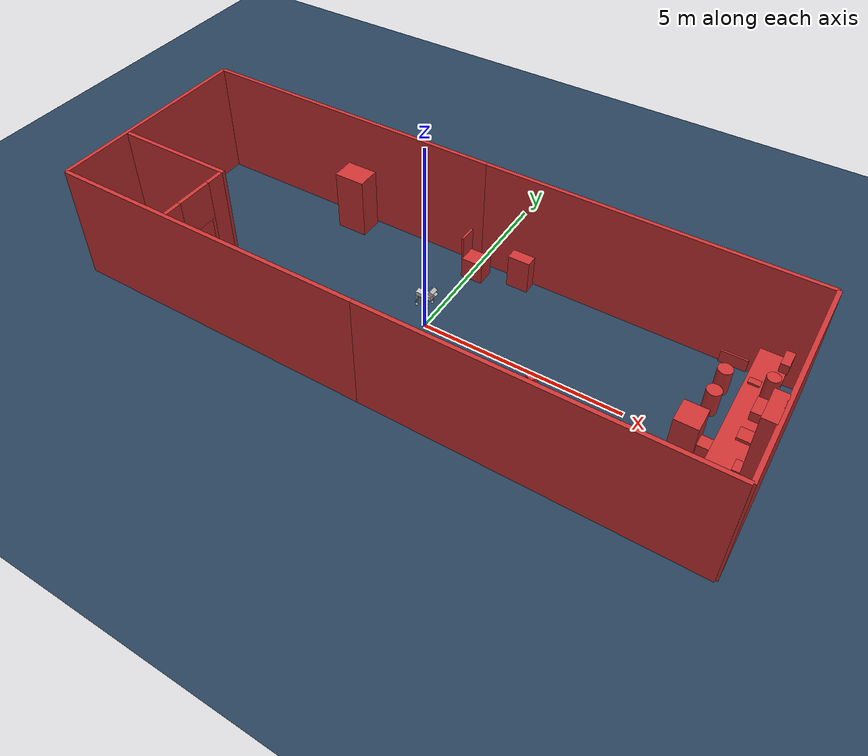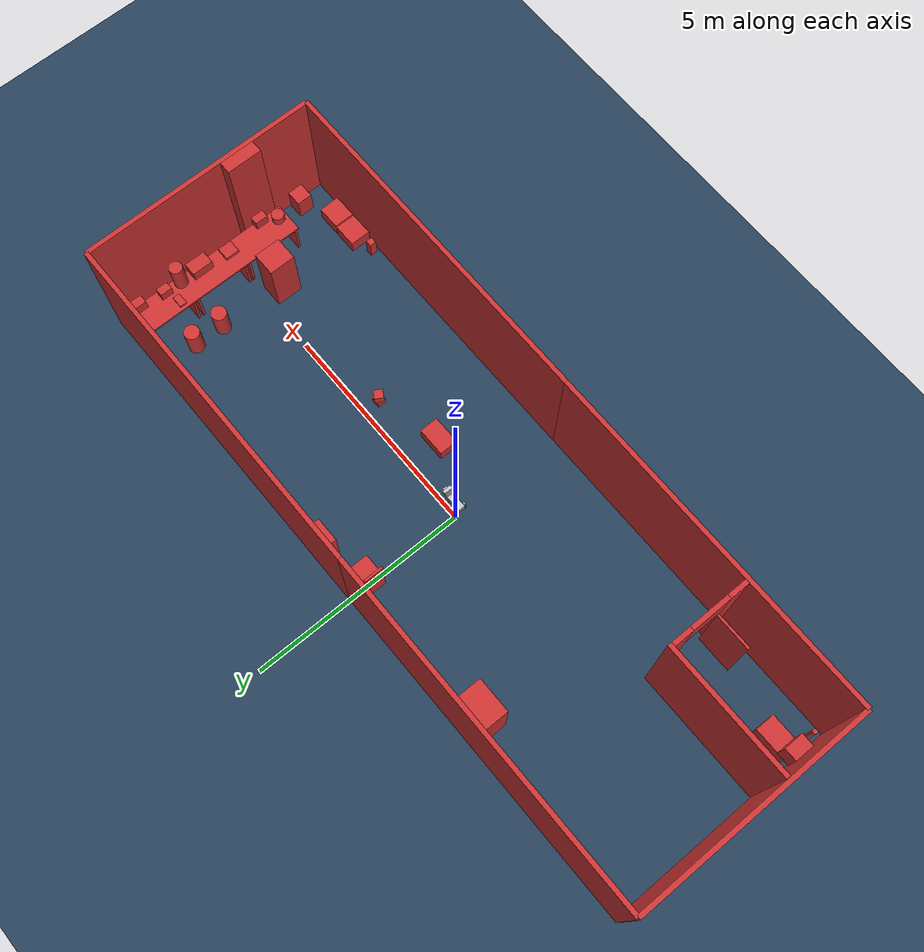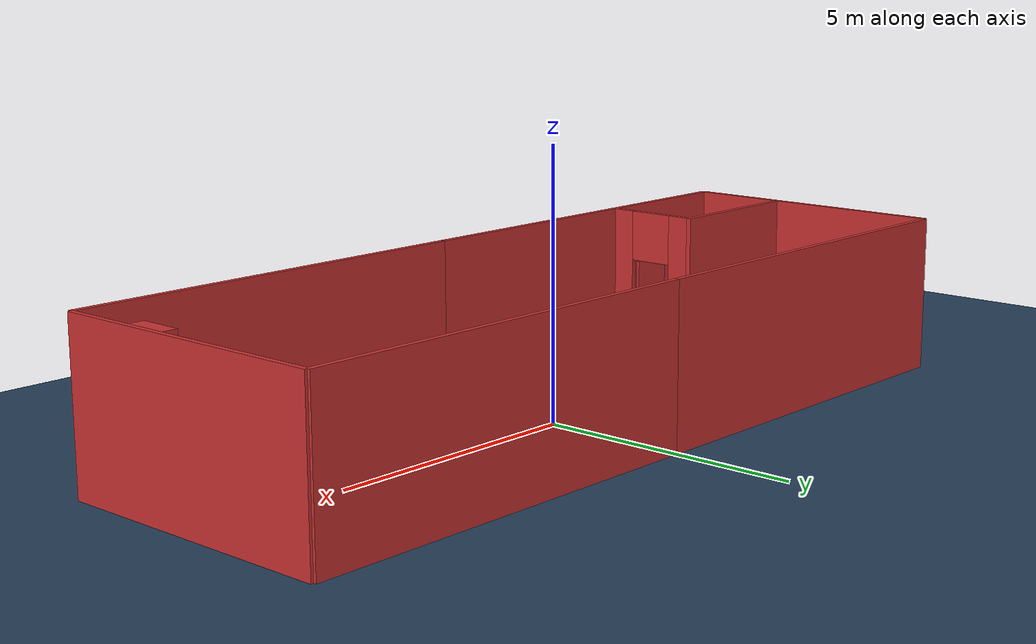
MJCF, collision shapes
<mujoco model="XXG scene">
  <include file="xxg.xml" />

  <statistic center="0 0 0.1" extent="0.8" />

  <visual>
    <headlight diffuse="0.6 0.6 0.6" ambient="0.3 0.3 0.3" specular="0 0 0" />
    <rgba haze="0.15 0.25 0.35 1" />
    <global azimuth="-130" elevation="-20" />
    <map znear="0.01" zfar="100"/>
  </visual>

  <asset>
    <texture type="skybox" builtin="gradient" rgb1="0.3 0.5 0.7" rgb2="0 0 0" width="512" height="3072" />
    <texture type="2d" name="groundplane" builtin="checker" mark="edge" rgb1="0.2 0.3 0.4" rgb2="0.1 0.2 0.3" markrgb="0.8 0.8 0.8" width="300" height="300" />
    <material name="groundplane" texture="groundplane" texuniform="true" texrepeat="5 5" reflectance="0.2" />
  <hfield name="perlin_hfield" size="1.0 0.75 0.2 0.2" file="../height_field.png" /><hfield name="image_hfield" size="1.0 1.0 0.02 0.1" file="../unitree_hfield.png" /></asset>

  <worldbody>
    <light pos="0 0 1.5" dir="0 0 -1" directional="true" />
    <geom name="floor" pos="0 0.0 0.01" size="0 0 0.05" type="plane" material="groundplane" />
    <geom name="phs_Cube" type="box" size="0.28 0.15 0.45" pos="1.2 2.44 0.44" quat="1.0 0.0 0.0 0.0" rgba="0.8 0.2 0.2 1" solref="0.02 1" solimp="0.9 0.95 0.001"/>
    <geom name="phs_Cube32" type="box" size="4.0 0.05 1.5" pos="4.0 2.7 1.5" quat="1.0 0.0 0.0 0.0" rgba="0.8 0.2 0.2 1" solref="0.02 1" solimp="0.9 0.95 0.001"/>
    <geom name="phs_Cube33" type="box" size="4.0 0.05 1.5" pos="4.0 -2.7 1.5" quat="1.0 0.0 0.0 0.0" rgba="0.8 0.2 0.2 1" solref="0.02 1" solimp="0.9 0.95 0.001"/>
    <geom name="phs_Cube34" type="box" size="2.7 0.05 1.5" pos="8.0 0.0 1.5" quat="0.707107 0.0 0.0 -0.707107" rgba="0.8 0.2 0.2 1" solref="0.02 1" solimp="0.9 0.95 0.001"/>
    <geom name="phs_Cube35" type="box" size="4.0 0.05 1.5" pos="-4.0 2.7 1.5" quat="1.0 0.0 0.0 0.0" rgba="0.8 0.2 0.2 1" solref="0.02 1" solimp="0.9 0.95 0.001"/>
    <geom name="phs_Cube36" type="box" size="4.0 0.05 1.5" pos="-4.0 -2.7 1.5" quat="1.0 0.0 0.0 0.0" rgba="0.8 0.2 0.2 1" solref="0.02 1" solimp="0.9 0.95 0.001"/>
    <geom name="phs_Cube37" type="box" size="2.7 0.05 1.5" pos="-8.0 0.0 1.5" quat="0.707107 0.0 0.0 -0.707107" rgba="0.8 0.2 0.2 1" solref="0.02 1" solimp="0.9 0.95 0.001"/>
    <geom name="phs_Cube38" type="box" size="0.4 0.15 1.5" pos="7.82 -0.9 1.5" quat="0.707107 0.0 0.0 -0.707107" rgba="0.8 0.2 0.2 1" solref="0.02 1" solimp="0.9 0.95 0.001"/>
    <geom name="phs_Cube39" type="box" size="1.5 0.05 1.5" pos="-6.44 -0.8 1.5" quat="1.0 0.0 0.0 0.0" rgba="0.8 0.2 0.2 1" solref="0.02 1" solimp="0.9 0.95 0.001"/>
    <geom name="phs_Cube40" type="box" size="0.225 0.05 1.5" pos="-4.99 -2.43 1.5" quat="0.707107 0.0 0.0 -0.707107" rgba="0.8 0.2 0.2 1" solref="0.02 1" solimp="0.9 0.95 0.001"/>
    <geom name="phs_Cube41" type="box" size="0.225 0.05 1.5" pos="-4.99 -1.07 1.5" quat="0.707107 0.0 0.0 -0.707107" rgba="0.8 0.2 0.2 1" solref="0.02 1" solimp="0.9 0.95 0.001"/>
    <geom name="phs_Cube42" type="box" size="0.455 0.05 0.5" pos="-4.99 -1.75 2.5" quat="0.707107 0.0 0.0 -0.707107" rgba="0.8 0.2 0.2 1" solref="0.02 1" solimp="0.9 0.95 0.001"/>
    <geom name="phs_Cube2" type="box" size="0.28 0.225 0.3" pos="0.1 2.2 0.25" quat="1.0 0.0 0.0 0.0" rgba="0.8 0.2 0.2 1" solref="0.02 1" solimp="0.9 0.95 0.001"/>
    <geom name="phs_Cube3" type="box" size="0.025 0.225 0.3" pos="-0.17 2.2 0.88" quat="1.0 0.0 0.0 0.0" rgba="0.8 0.2 0.2 1" solref="0.02 1" solimp="0.9 0.95 0.001"/>
    <geom name="phs_Cube4" type="box" size="0.315 0.025 0.17" pos="6.5 2.62 0.17" quat="1.0 0.0 0.0 0.0" rgba="0.8 0.2 0.2 1" solref="0.02 1" solimp="0.9 0.95 0.001"/>
    <geom name="phs_Cube5" type="box" size="0.315 0.025 0.4" pos="7.305 2.59 0.4" quat="1.0 0.0 0.0 0.0" rgba="0.8 0.2 0.2 1" solref="0.02 1" solimp="0.9 0.95 0.001"/>
    <geom name="phs_Cube6" type="box" size="0.315 0.025 0.4" pos="7.305 1.36 0.4" quat="1.0 0.0 0.0 0.0" rgba="0.8 0.2 0.2 1" solref="0.02 1" solimp="0.9 0.95 0.001"/>
    <geom name="phs_Cube7" type="box" size="0.315 0.025 0.4" pos="7.305 1.24 0.4" quat="1.0 0.0 0.0 0.0" rgba="0.8 0.2 0.2 1" solref="0.02 1" solimp="0.9 0.95 0.001"/>
    <geom name="phs_Cube8" type="box" size="0.315 0.025 0.4" pos="7.305 0.0 0.4" quat="1.0 0.0 0.0 0.0" rgba="0.8 0.2 0.2 1" solref="0.02 1" solimp="0.9 0.95 0.001"/>
    <geom name="phs_Cube9" type="box" size="0.315 0.025 0.4" pos="7.305 -0.1 0.4" quat="1.0 0.0 0.0 0.0" rgba="0.8 0.2 0.2 1" solref="0.02 1" solimp="0.9 0.95 0.001"/>
    <geom name="phs_Cube10" type="box" size="0.315 0.025 0.4" pos="7.305 -1.34 0.4" quat="1.0 0.0 0.0 0.0" rgba="0.8 0.2 0.2 1" solref="0.02 1" solimp="0.9 0.95 0.001"/>
    <geom name="phs_Cube11" type="box" size="0.175 0.175 0.26" pos="7.75 -2.0 0.27" quat="1.0 0.0 0.0 0.0" rgba="0.8 0.2 0.2 1" solref="0.02 1" solimp="0.9 0.95 0.001"/>
    <geom name="phs_Cube12" type="box" size="0.27 0.25 0.155" pos="7.0 -2.43 0.155" quat="1.0 0.0 0.0 0.0" rgba="0.8 0.2 0.2 1" solref="0.02 1" solimp="0.9 0.95 0.001"/>
    <geom name="phs_Cube13" type="box" size="0.27 0.25 0.155" pos="6.43 -2.43 0.155" quat="1.0 0.0 0.0 0.0" rgba="0.8 0.2 0.2 1" solref="0.02 1" solimp="0.9 0.95 0.001"/>
    <geom name="phs_Cube14" type="box" size="0.1 0.1 0.1" pos="3.0 -0.4 0.1" quat="1.0 0.0 0.0 0.0" rgba="0.8 0.2 0.2 1" solref="0.02 1" solimp="0.9 0.95 0.001"/>
    <geom name="phs_Cube15" type="box" size="0.1 0.1 0.1" pos="3.0 -0.4 0.3" quat="0.965926 0.0 0.0 -0.258819" rgba="0.8 0.2 0.2 1" solref="0.02 1" solimp="0.9 0.95 0.001"/>
    <geom name="phs_Cube16" type="box" size="0.33 0.215 0.155" pos="1.5 -0.795 0.155" quat="1.0 0.0 0.0 0.0" rgba="0.8 0.2 0.2 1" solref="0.02 1" solimp="0.9 0.95 0.001"/>
    <geom name="phs_Cube17" type="box" size="0.4 0.3 0.82" pos="-3.5 2.27 0.82" quat="1.0 0.0 0.0 0.0" rgba="0.8 0.2 0.2 1" solref="0.02 1" solimp="0.9 0.95 0.001"/>
    <geom name="phs_Cube18" type="box" size="0.075 0.075 0.21" pos="5.89 -2.5 0.21" quat="1.0 0.0 0.0 0.0" rgba="0.8 0.2 0.2 1" solref="0.02 1" solimp="0.9 0.95 0.001"/>
    <geom name="phs_Cube19" type="box" size="0.27 0.3 0.7" pos="6.43 -0.45 0.7" quat="1.0 0.0 0.0 0.0" rgba="0.8 0.2 0.2 1" solref="0.02 1" solimp="0.9 0.95 0.001"/>
    <geom name="phs_Cube20" type="box" size="0.15 0.15 0.4" pos="6.83 -0.45 0.4" quat="1.0 0.0 0.0 0.0" rgba="0.8 0.2 0.2 1" solref="0.02 1" solimp="0.9 0.95 0.001"/>
    <geom name="phs_Cube21" type="box" size="0.375 0.225 0.325" pos="-7.44 -1.795 0.325" quat="1.0 0.0 0.0 0.0" rgba="0.8 0.2 0.2 1" solref="0.02 1" solimp="0.9 0.95 0.001"/>
    <geom name="phs_Cube22" type="box" size="0.15 0.225 0.325" pos="-7.79 -1.795 0.925" quat="1.0 0.0 0.0 0.0" rgba="0.8 0.2 0.2 1" solref="0.02 1" solimp="0.9 0.95 0.001"/>
    <geom name="phs_Cylinder"  type="cylinder" size="0.175 0.35" pos="6.5 1.1 0.31" quat="1.0 0.0 0.0 0.0" rgba="0.8 0.2 0.2 1" solref="0.02 1" solimp="0.9 0.95 0.001"/>
    <geom name="phs_Cylinder2"  type="cylinder" size="0.175 0.35" pos="6.5 1.8 0.31" quat="1.0 0.0 0.0 0.0" rgba="0.8 0.2 0.2 1" solref="0.02 1" solimp="0.9 0.95 0.001"/>
    <geom name="phs_Cylinder3"  type="cylinder" size="0.05 0.35" pos="-7.8 -2.39 0.35" quat="1.0 0.0 0.0 0.0" rgba="0.8 0.2 0.2 1" solref="0.02 1" solimp="0.9 0.95 0.001"/>
    <geom name="phs_Cylinder4"  type="cylinder" size="0.075 0.35" pos="-7.7 -1.0 0.35" quat="1.0 0.0 0.0 0.0" rgba="0.8 0.2 0.2 1" solref="0.02 1" solimp="0.9 0.95 0.001"/>
    <geom name="phs_Cube23" type="box" size="0.345 2.05 0.02" pos="7.3 0.65 0.785" quat="1.0 0.0 0.0 0.0" rgba="0.8 0.2 0.2 1" solref="0.02 1" solimp="0.9 0.95 0.001"/>
    <geom name="phs_Cylinder5"  type="cylinder" size="0.15 0.35" pos="7.5 1.3 1.11" quat="1.0 0.0 0.0 0.0" rgba="0.8 0.2 0.2 1" solref="0.02 1" solimp="0.9 0.95 0.001"/>
    <geom name="phs_Cylinder6"  type="cylinder" size="0.14 0.1" pos="7.4 -1.2 0.91" quat="1.0 0.0 0.0 0.0" rgba="0.8 0.2 0.2 1" solref="0.02 1" solimp="0.9 0.95 0.001"/>
    <geom name="phs_Cube24" type="box" size="0.1 0.225 0.125" pos="7.57 2.4 0.93" quat="1.0 0.0 0.0 0.0" rgba="0.8 0.2 0.2 1" solref="0.02 1" solimp="0.9 0.95 0.001"/>
    <geom name="phs_Cube25" type="box" size="0.09 0.135 0.11" pos="7.49 1.71 0.92" quat="1.0 0.0 0.0 0.0" rgba="0.8 0.2 0.2 1" solref="0.02 1" solimp="0.9 0.95 0.001"/>
    <geom name="phs_Cube26" type="box" size="0.15 0.24 0.125" pos="7.5 0.8 0.93" quat="1.0 0.0 0.0 0.0" rgba="0.8 0.2 0.2 1" solref="0.02 1" solimp="0.9 0.95 0.001"/>
    <geom name="phs_Cube27" type="box" size="0.15 0.16 0.04" pos="7.45 0.09 0.84" quat="1.0 0.0 0.0 0.0" rgba="0.8 0.2 0.2 1" solref="0.02 1" solimp="0.9 0.95 0.001"/>
    <geom name="phs_Cube28" type="box" size="0.09 0.15 0.125" pos="7.58 -0.85 0.91" quat="1.0 0.0 0.0 0.0" rgba="0.8 0.2 0.2 1" solref="0.02 1" solimp="0.9 0.95 0.001"/>
    <geom name="phs_Cube29" type="box" size="0.1325 0.08 0.025" pos="7.16 1.58 0.83" quat="1.0 0.0 0.0 0.0" rgba="0.8 0.2 0.2 1" solref="0.02 1" solimp="0.9 0.95 0.001"/>
    <geom name="phs_Cube43" type="box" size="0.42 0.03 0.975" pos="-5.46 -2.14 0.985" quat="1.0 0.0 0.0 0.0" rgba="0.8 0.2 0.2 1" solref="0.02 1" solimp="0.9 0.95 0.001"/>
    </worldbody>
</mujoco>

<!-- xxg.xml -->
<mujoco model="DOG">
  <compiler angle="radian" meshdir="assets/"/>

  <asset>
    <mesh name="BASE_LINK" file="BASE_LINK.STL"/>
    <mesh name="FBL_ABAD_LINK" file="FBL_ABAD_LINK.STL"/>
    <mesh name="FBL_HIP_LINK" file="FBL_HIP_LINK.STL"/>
    <mesh name="FBL_KNEE_LINK" file="FBL_KNEE_LINK.STL"/>
    <mesh name="FBL_FOOT_LINK" file="FBL_FOOT_LINK.STL"/>
    <mesh name="FAR_ABAD_LINK" file="FAR_ABAD_LINK.STL"/>
    <mesh name="FAR_HIP_LINK" file="FAR_HIP_LINK.STL"/>
    <mesh name="FAR_KNEE_LINK" file="FAR_KNEE_LINK.STL"/>
    <mesh name="FAR_FOOT_LINK" file="FAR_FOOT_LINK.STL"/>
    <mesh name="RAR_ABAD_LINK" file="RAR_ABAD_LINK.STL"/>
    <mesh name="RAR_HIP_LINK" file="RAR_HIP_LINK.STL"/>
    <mesh name="RAR_KNEE_LINK" file="RAR_KNEE_LINK.STL"/>
    <mesh name="RAR_FOOT_LINK" file="RAR_FOOT_LINK.STL"/>
    <mesh name="RBL_ABAD_LINK" file="RBL_ABAD_LINK.STL"/>
    <mesh name="RBL_HIP_LINK" file="RBL_HIP_LINK.STL"/>
    <mesh name="RBL_KNEE_LINK" file="RBL_KNEE_LINK.STL"/>
    <mesh name="RBL_FOOT_LINK" file="RBL_FOOT_LINK.STL"/>
    <mesh name="HEAD1_LINK" file="HEAD1_LINK.STL"/>
    <mesh name="HEAD2_LINK" file="HEAD2_LINK.STL"/>
  </asset>

  <worldbody>
    <body name="BASE_LINK" pos="0 0 1.0">
      <inertial pos="1.8341473e-02 -1.9475667e-04 1.6646741e-02" quat="-0 0 0 1" mass="5.6608325" diaginertia="0.039340224 8.8059075e-02 7.6312096e-02"/>
      <freejoint />
      <site name="imu" pos="0.0 0 0.0" />
    <!-- add livox_imu -->
    <site name="livox_imu" pos="0.18 0.0 0.3" quat="1.0 0.0 0.0 0.0"/>
    <!-- add camera imu -->
    <site name="camera_imu" pos="0.18 0.0 0.3" quat="1.0 0.0 0.0 0.0"/>

    <geom type="mesh" contype="0" conaffinity="0" group="1" density="0" rgba="0.75294 0.75294 0.75294 1.0" mesh="BASE_LINK"/>
    <geom size="0.2 0.075 0.055" type="box" rgba="0.75294 0.75294 0.75294 0.0"/>
    <geom pos="0.1775 0 0.1164" quat="0.965249 0 0.26133 0" type="mesh" contype="0" conaffinity="0" group="1" density="0" rgba="0.75294 0.75294 0.75294 1.0" mesh="HEAD1_LINK"/>
    <geom pos="0.1775 0 0.1164" quat="0.965249 0 0.26133 0" type="mesh" contype="0" conaffinity="0" group="1" density="0" rgba="0.75294 0.75294 0.75294 1.0" mesh="HEAD2_LINK"/>
    <geom size="0.05 0.1 0.06" pos="0.204181 0 0.181884" quat="0.965249 0 0.26133 0" type="box" rgba="0.75294 0.75294 0.75294 0.0"/>
    <geom size="0.035 0.05 0.04" pos="0.27432 0 0.123528" quat="0.965249 0 0.26133 0" type="box" rgba="0.75294 0.75294 0.75294 0.0"/>
    <body name="FBL_ABAD_LINK" pos="0.1305 0.0377 0">
      <inertial pos="-0.0258732 0.00474653 0" quat="0.446156 0.446156 0.548585 0.548585" mass="0.29007" diaginertia="0.000234429 0.000228281 4.61129e-05"/>
      <joint name="FBL_ABAD_JOINT" pos="0 0 0" axis="1 0 0" range="-0.4887 0.4887" actuatorfrcrange="-20 20"/>
      <geom type="mesh" contype="0" conaffinity="0" group="1" density="0" rgba="0.75294 0.75294 0.75294 1.0" mesh="FBL_ABAD_LINK"/>
      <body name="FBL_HIP_LINK">
        <inertial pos="0 0.0475203 -0.0615104" quat="0.992663 0.120643 7.95638e-06 -0.00808508" mass="0.698577" diaginertia="0.00315469 0.00310141 0.000383698"/>
        <joint name="FBL_HIP_JOINT" pos="0 0 0" axis="0 1 0" range="-2.967 2.967" actuatorfrcrange="-20 20"/>
        <geom type="mesh" contype="0" conaffinity="0" group="1" density="0" rgba="0.75294 0.75294 0.75294 1.0" mesh="FBL_HIP_LINK"/>
        <geom size="0.025 0.015 0.03" pos="-0.01 0.085 -0.06" type="box" rgba="0.75294 0.75294 0.75294 1.0"/>
        <body name="FBL_KNEE_LINK" pos="0 0.08786 -0.1307">
          <inertial pos="0.00368489 0.0063771 -0.0635258" quat="0.608469 0.0177668 -0.0332576 0.792681" mass="0.288584" diaginertia="0.00161384 0.00159203 5.37708e-05"/>
          <joint name="FBL_KNEE_JOINT" pos="0 0 0" axis="0 1 0" range="-2.723 2.702" actuatorfrcrange="-20 20"/>
          <geom type="mesh" contype="0" conaffinity="0" group="1" density="0" rgba="0.49804 0.49804 0.49804 1.0" mesh="FBL_KNEE_LINK"/>
          <geom size="0.015 0.01 0.045" pos="0 0 -0.05" quat="0.994493 0 0.104807 0" type="box" rgba="0.49804 0.49804 0.49804 1.0"/>
          <geom pos="0 0 -0.1425" type="mesh" contype="0" conaffinity="0" group="1" density="0" rgba="0.75294 0.75294 0.75294 1.0" mesh="FBL_FOOT_LINK"/>
          <geom size="0.03" pos="0 0 -0.1425" quat="0.707388 0.706825 0 0" rgba="0.75294 0.75294 0.75294 1.0"/>
        </body>
      </body>
    </body>
    <body name="FAR_ABAD_LINK" pos="0.1305 -0.0377 0">
      <inertial pos="-0.0258732 -0.00474653 0" quat="0.548585 0.548585 0.446156 0.446156" mass="0.29007" diaginertia="0.000234429 0.000228281 4.61129e-05"/>
      <joint name="FAR_ABAD_JOINT" pos="0 0 0" axis="1 0 0" range="-0.4887 0.4887" actuatorfrcrange="-20 20"/>
      <geom type="mesh" contype="0" conaffinity="0" group="1" density="0" rgba="0.75294 0.75294 0.75294 1.0" mesh="FAR_ABAD_LINK"/>
      <body name="FAR_HIP_LINK">
        <inertial pos="0 -0.0475203 -0.0615104" quat="0.992663 -0.120643 7.95638e-06 0.00808508" mass="0.698577" diaginertia="0.00315469 0.00310141 0.000383698"/>
        <joint name="FAR_HIP_JOINT" pos="0 0 0" axis="0 1 0" range="-2.967 2.967" actuatorfrcrange="-20 20"/>
        <geom type="mesh" contype="0" conaffinity="0" group="1" density="0" rgba="0.75294 0.75294 0.75294 1.0" mesh="FAR_HIP_LINK"/>
        <geom size="0.025 0.015 0.03" pos="-0.01 -0.085 -0.06" type="box" rgba="0.75294 0.75294 0.75294 1.0"/>
        <body name="FAR_KNEE_LINK" pos="0 -0.08786 -0.1307">
          <inertial pos="0.00368489 -0.0063771 -0.0635258" quat="0.792681 -0.0332576 0.0177668 0.608469" mass="0.288584" diaginertia="0.00161384 0.00159203 5.37708e-05"/>
          <joint name="FAR_KNEE_JOINT" pos="0 0 0" axis="0 1 0" range="-2.723 2.702" actuatorfrcrange="-20 20"/>
          <geom type="mesh" contype="0" conaffinity="0" group="1" density="0" rgba="0.49804 0.49804 0.49804 1.0" mesh="FAR_KNEE_LINK"/>
          <geom size="0.015 0.01 0.045" pos="0 0 -0.05" quat="0.994493 0 0.104807 0" type="box" rgba="0.49804 0.49804 0.49804 1.0"/>
          <geom pos="0 0 -0.1425" type="mesh" contype="0" conaffinity="0" group="1" density="0" rgba="0.75294 0.75294 0.75294 1.0" mesh="FAR_FOOT_LINK"/>
          <geom size="0.03" pos="0 0 -0.1425" quat="0.707388 0.706825 0 0" rgba="0.75294 0.75294 0.75294 1.0"/>
        </body>
      </body>
    </body>
    <body name="RAR_ABAD_LINK" pos="-0.1305 -0.0377 0">
      <inertial pos="0.0258732 -0.00474653 0" quat="0.446156 0.446156 0.548585 0.548585" mass="0.29007" diaginertia="0.000234429 0.000228281 4.61129e-05"/>
      <joint name="RAR_ABAD_JOINT" pos="0 0 0" axis="1 0 0" range="-0.4887 0.4887" actuatorfrcrange="-20 20"/>
      <geom type="mesh" contype="0" conaffinity="0" group="1" density="0" rgba="0.75294 0.75294 0.75294 1.0" mesh="RAR_ABAD_LINK"/>
      <body name="RAR_HIP_LINK">
        <inertial pos="0 -0.0475203 -0.0615104" quat="0.992663 -0.120643 7.95638e-06 0.00808508" mass="0.698577" diaginertia="0.00315469 0.00310141 0.000383698"/>
        <joint name="RAR_HIP_JOINT" pos="0 0 0" axis="0 1 0" range="-2.967 2.967" actuatorfrcrange="-20 20"/>
        <geom type="mesh" contype="0" conaffinity="0" group="1" density="0" rgba="0.75294 0.75294 0.75294 1.0" mesh="RAR_HIP_LINK"/>
        <geom size="0.025 0.015 0.03" pos="0 -0.085 -0.06" type="box" rgba="0.75294 0.75294 0.75294 1.0"/>
        <body name="RAR_KNEE_LINK" pos="0 -0.08786 -0.1307">
          <inertial pos="0.00368489 -0.0063771 -0.0634925" quat="0.792566 -0.0333078 0.0177921 0.608615" mass="0.288584" diaginertia="0.0016124 0.00159058 5.37526e-05"/>
          <joint name="RAR_KNEE_JOINT" pos="0 0 0" axis="0 1 0" range="-2.723 2.702" actuatorfrcrange="-20 20"/>
          <geom type="mesh" contype="0" conaffinity="0" group="1" density="0" rgba="0.49804 0.49804 0.49804 1.0" mesh="RAR_KNEE_LINK"/>
          <geom size="0.015 0.01 0.045" pos="-0.01 0 -0.04" quat="0.930508 0 0.366273 0" type="box" rgba="0.49804 0.49804 0.49804 1.0"/>
          <geom pos="0 0 -0.1357" quat="1 0 0 0" type="mesh" contype="0" conaffinity="0" group="1" density="0" rgba="0.75294 0.75294 0.75294 1.0" mesh="RAR_FOOT_LINK"/>
          <geom size="0.03" pos="0 0 -0.1357" quat="0.707388 0.706825 0 0" rgba="0.75294 0.75294 0.75294 1.0"/>
        </body>
      </body>
    </body>
    <body name="RBL_ABAD_LINK" pos="-0.1305 0.0377 0">
      <inertial pos="0.0258732 0.00474653 0" quat="0.548585 0.548585 0.446156 0.446156" mass="0.29007" diaginertia="0.000234429 0.000228281 4.61129e-05"/>
      <joint name="RBL_ABAD_JOINT" pos="0 0 0" axis="1 0 0" range="-0.4887 0.4887" actuatorfrcrange="-20 20"/>
      <geom type="mesh" contype="0" conaffinity="0" group="1" density="0" rgba="0.75294 0.75294 0.75294 1.0" mesh="RBL_ABAD_LINK"/>
      <body name="RBL_HIP_LINK">
        <inertial pos="0 0.0475203 -0.0615104" quat="0.992663 0.120643 7.95638e-06 -0.00808508" mass="0.698577" diaginertia="0.00315469 0.00310141 0.000383698"/>
        <joint name="RBL_HIP_JOINT" pos="0 0 0" axis="0 1 0" range="-2.967 2.967" actuatorfrcrange="-20 20"/>
        <geom type="mesh" contype="0" conaffinity="0" group="1" density="0" rgba="0.75294 0.75294 0.75294 1.0" mesh="RBL_HIP_LINK"/>
        <geom size="0.025 0.015 0.03" pos="0 0.085 -0.06" type="box" rgba="0.75294 0.75294 0.75294 1.0"/>
        <body name="RBL_KNEE_LINK" pos="0 0.08786 -0.1307">
          <inertial pos="0.00368489 0.0063771 -0.0634925" quat="0.608615 0.0177921 -0.0333078 0.792566" mass="0.288584" diaginertia="0.0016124 0.00159058 5.37526e-05"/>
          <joint name="RBL_KNEE_JOINT" pos="0 0 0" axis="0 1 0" range="-2.723 2.702" actuatorfrcrange="-20 20"/>
          <geom type="mesh" contype="0" conaffinity="0" group="1" density="0" rgba="0.49804 0.49804 0.49804 1.0" mesh="RBL_KNEE_LINK"/>
          <geom size="0.015 0.01 0.045" pos="-0.01 0 -0.04" quat="0.930508 0 0.366273 0" type="box" rgba="0.49804 0.49804 0.49804 1.0"/>
          <geom pos="0 0 -0.1357" quat="1 0 0 0" type="mesh" contype="0" conaffinity="0" group="1" density="0" rgba="0.75294 0.75294 0.75294 1.0" mesh="RBL_FOOT_LINK"/>
          <geom size="0.03" pos="0 0 -0.1357" quat="0.707388 0.706825 0 0" rgba="0.75294 0.75294 0.75294 1.0"/>
        </body>
      </body>
    </body>
  </body>
  </worldbody>
    <actuator>
        <motor name="FR_ABAD_LINK" joint="FAR_ABAD_JOINT" />
        <motor name="FR_HIP_LINK" joint="FAR_HIP_JOINT" />
        <motor name="FR_KNEE_LINK" joint="FAR_KNEE_JOINT" />
        <motor name="FL_ABAD_LINK" joint="FBL_ABAD_JOINT" />
        <motor name="FL_HIP_LINK" joint="FBL_HIP_JOINT" />
        <motor name="FL_KNEE_LINK" joint="FBL_KNEE_JOINT" />
        <motor name="RR_ABAD_LINK" joint="RAR_ABAD_JOINT" />
        <motor name="RR_HIP_LINK" joint="RAR_HIP_JOINT" />
        <motor name="RR_KNEE_LINK" joint="RAR_KNEE_JOINT" />
        <motor name="RL_ABAD_LINK" joint="RBL_ABAD_JOINT" />
        <motor name="RL_HIP_LINK" joint="RBL_HIP_JOINT" />
        <motor name="RL_KNEE_LINK" joint="RBL_KNEE_JOINT" />
    </actuator>

    <sensor>
        <jointpos name="FR_hip_pos" joint="FAR_ABAD_JOINT" />
        <jointpos name="FR_thigh_pos" joint="FAR_HIP_JOINT" />
        <jointpos name="FR_calf_pos" joint="FAR_KNEE_JOINT" />
        <jointpos name="FL_hip_pos" joint="FBL_ABAD_JOINT" />
        <jointpos name="FL_thigh_pos" joint="FBL_HIP_JOINT" />
        <jointpos name="FL_calf_pos" joint="FBL_KNEE_JOINT" />
        <jointpos name="RR_hip_pos" joint="RAR_ABAD_JOINT" />
        <jointpos name="RR_thigh_pos" joint="RAR_HIP_JOINT" />
        <jointpos name="RR_calf_pos" joint="RAR_KNEE_JOINT" />
        <jointpos name="RL_hip_pos" joint="RBL_ABAD_JOINT" />
        <jointpos name="RL_thigh_pos" joint="RBL_HIP_JOINT" />
        <jointpos name="RL_calf_pos" joint="RBL_KNEE_JOINT" />

        <jointvel name="FR_hip_vel" joint="FAR_ABAD_JOINT" />
        <jointvel name="FR_thigh_vel" joint="FAR_HIP_JOINT" />
        <jointvel name="FR_calf_vel" joint="FAR_KNEE_JOINT" />
        <jointvel name="FL_hip_vel" joint="FBL_ABAD_JOINT" />
        <jointvel name="FL_thigh_vel" joint="FBL_HIP_JOINT" />
        <jointvel name="FL_calf_vel" joint="FBL_KNEE_JOINT" />
        <jointvel name="RR_hip_vel" joint="RAR_ABAD_JOINT" />
        <jointvel name="RR_thigh_vel" joint="RAR_HIP_JOINT" />
        <jointvel name="RR_calf_vel" joint="RAR_KNEE_JOINT" />
        <jointvel name="RL_hip_vel" joint="RBL_ABAD_JOINT" />
        <jointvel name="RL_thigh_vel" joint="RBL_HIP_JOINT" />
        <jointvel name="RL_calf_vel" joint="RBL_KNEE_JOINT" />

        <jointactuatorfrc name="FR_hip_torque" joint="FAR_ABAD_JOINT" noise="0.01" />
        <jointactuatorfrc name="FR_thigh_torque" joint="FAR_HIP_JOINT" noise="0.01" />
        <jointactuatorfrc name="FR_calf_torque" joint="FAR_KNEE_JOINT" noise="0.01" />
        <jointactuatorfrc name="FL_hip_torque" joint="FBL_ABAD_JOINT" noise="0.01" />
        <jointactuatorfrc name="FL_thigh_torque" joint="FBL_HIP_JOINT" noise="0.01" />
        <jointactuatorfrc name="FL_calf_torque" joint="FBL_KNEE_JOINT" noise="0.01" />
        <jointactuatorfrc name="RR_hip_torque" joint="RAR_ABAD_JOINT" noise="0.01" />
        <jointactuatorfrc name="RR_thigh_torque" joint="RAR_HIP_JOINT" noise="0.01" />
        <jointactuatorfrc name="RR_calf_torque" joint="RAR_KNEE_JOINT" noise="0.01" />
        <jointactuatorfrc name="RL_hip_torque" joint="RBL_ABAD_JOINT" noise="0.01" />
        <jointactuatorfrc name="RL_thigh_torque" joint="RBL_HIP_JOINT" noise="0.01" />
        <jointactuatorfrc name="RL_calf_torque" joint="RBL_KNEE_JOINT" noise="0.01" />

        <framequat name="imu_quat" objtype="site" objname="imu" />
        <gyro name="imu_gyro" site="imu" />
        <accelerometer name="imu_acc" site="imu" />

        <framepos name="frame_pos" objtype="site" objname="imu" />
        <framelinvel name="frame_vel" objtype="site" objname="imu" />

        <!-- add livox_imu -->
        <framequat name="livox_imu_quat" objtype="site" objname="livox_imu" />
        <gyro name="livox_imu_gyro" site="livox_imu" />
        <accelerometer name="livox_imu_acc" site="livox_imu" />

        <framepos name="livox_imu_frame_pos" objtype="site" objname="livox_imu" />
        <framelinvel name="livox_imu_frame_vel" objtype="site" objname="livox_imu" />

        <!-- add camera imu -->
        <framequat name="camera_imu_quat" objtype="site" objname="camera_imu" />
        <gyro name="camera_imu_gyro" site="camera_imu" />
        <accelerometer name="camera_imu_acc" site="camera_imu" />

        <framepos name="camera_imu_frame_pos" objtype="site" objname="camera_imu" />
        <framelinvel name="camera_imu_frame_vel" objtype="site" objname="camera_imu" />
    </sensor>

</mujoco>
